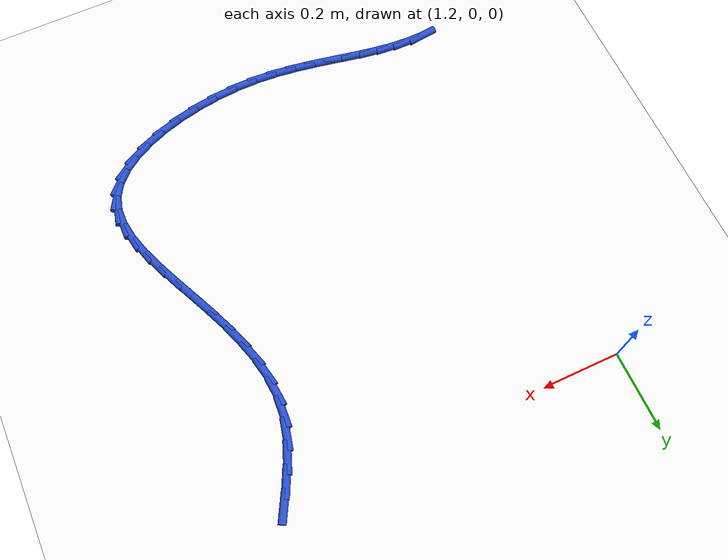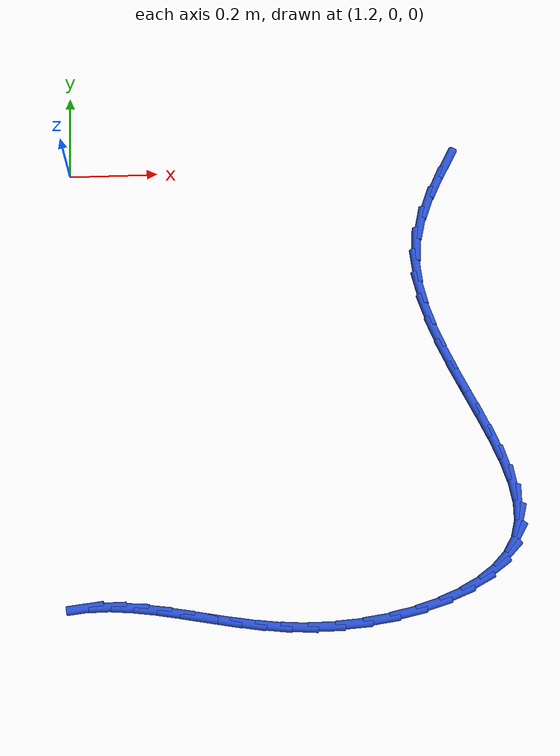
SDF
<sdf version="1.6">
 <world name="default">
  <model name="ground_plane">
   <static>1</static>
   <link name="link">
    <collision name="collision">
     <geometry><plane><normal>0 0 1</normal><size>100 100</size></plane></geometry>
     <surface><friction><ode><mu>100</mu><mu2>50</mu2></ode></friction></surface>
    </collision>
    <visual name="visual">
     <cast_shadows>0</cast_shadows>
     <geometry><plane><normal>0 0 1</normal><size>100 100</size></plane></geometry>
     <material>
      <script><uri>file://media/materials/scripts/gazebo.material</uri><name>Gazebo/WhiteGlow</name></script>
     </material>
    </visual>
   </link>
  </model>
  <model name="line">
   <link name="link_76">
    <pose>2.0655796693852513 -0.002304717286453758 0.01 0 1.57 1.080252154869839</pose>
    <collision name="collision">
     <geometry><cylinder><radius>0.01</radius><length>0.08</length></cylinder></geometry>
    </collision>
    <visual name="visual">
     <material>
      <script><name>Gazebo/Blue</name><uri>file://media/materials/scripts/gazebo.material</uri></script>
     </material>
     <geometry><cylinder><radius>0.01</radius><length>0.08</length></cylinder></geometry>
    </visual>
   </link>
   <link name="link_77">
    <pose>2.0397745782320316 -0.0506209555062561 0.01 0 1.57 1.127468500062821</pose>
    <collision name="collision">
     <geometry><cylinder><radius>0.01</radius><length>0.08</length></cylinder></geometry>
    </collision>
    <visual name="visual">
     <material>
      <script><name>Gazebo/Blue</name><uri>file://media/materials/scripts/gazebo.material</uri></script>
     </material>
     <geometry><cylinder><radius>0.01</radius><length>0.08</length></cylinder></geometry>
    </visual>
   </link>
   <link name="link_78">
    <pose>2.0162784045154667 -0.10010196946099545 0.01 0 1.57 1.212892779780893</pose>
    <collision name="collision">
     <geometry><cylinder><radius>0.01</radius><length>0.08</length></cylinder></geometry>
    </collision>
    <visual name="visual">
     <material>
      <script><name>Gazebo/Blue</name><uri>file://media/materials/scripts/gazebo.material</uri></script>
     </material>
     <geometry><cylinder><radius>0.01</radius><length>0.08</length></cylinder></geometry>
    </visual>
   </link>
   <link name="link_79">
    <pose>1.9973571829696326 -0.1506919479730085 0.01 0 1.57 1.3410104180642233</pose>
    <collision name="collision">
     <geometry><cylinder><radius>0.01</radius><length>0.08</length></cylinder></geometry>
    </collision>
    <visual name="visual">
     <material>
      <script><name>Gazebo/Blue</name><uri>file://media/materials/scripts/gazebo.material</uri></script>
     </material>
     <geometry><cylinder><radius>0.01</radius><length>0.08</length></cylinder></geometry>
    </visual>
   </link>
   <link name="link_80">
    <pose>1.9852769483286072 -0.2023350798646285 0.01 0 1.57 1.5071200783496619</pose>
    <collision name="collision">
     <geometry><cylinder><radius>0.01</radius><length>0.08</length></cylinder></geometry>
    </collision>
    <visual name="visual">
     <material>
      <script><name>Gazebo/Blue</name><uri>file://media/materials/scripts/gazebo.material</uri></script>
     </material>
     <geometry><cylinder><radius>0.01</radius><length>0.08</length></cylinder></geometry>
    </visual>
   </link>
   <link name="link_81">
    <pose>1.9819221370940712 -0.2549492944069339 0.01 0 1.57 -1.480041740921945</pose>
    <collision name="collision">
     <geometry><cylinder><radius>0.01</radius><length>0.08</length></cylinder></geometry>
    </collision>
    <visual name="visual">
     <material>
      <script><name>Gazebo/Blue</name><uri>file://media/materials/scripts/gazebo.material</uri></script>
     </material>
     <geometry><cylinder><radius>0.01</radius><length>0.08</length></cylinder></geometry>
    </visual>
   </link>
   <link name="link_82">
    <pose>1.9867761389426344 -0.3082872936586517 0.01 0 1.57 -1.3579830776845279</pose>
    <collision name="collision">
     <geometry><cylinder><radius>0.01</radius><length>0.08</length></cylinder></geometry>
    </collision>
    <visual name="visual">
     <material>
      <script><name>Gazebo/Blue</name><uri>file://media/materials/scripts/gazebo.material</uri></script>
     </material>
     <geometry><cylinder><radius>0.01</radius><length>0.08</length></cylinder></geometry>
    </visual>
   </link>
   <link name="link_83">
    <pose>1.9983908049084405 -0.3620376761668724 0.01 0 1.57 -1.26627769424861</pose>
    <collision name="collision">
     <geometry><cylinder><radius>0.01</radius><length>0.08</length></cylinder></geometry>
    </collision>
    <visual name="visual">
     <material>
      <script><name>Gazebo/Blue</name><uri>file://media/materials/scripts/gazebo.material</uri></script>
     </material>
     <geometry><cylinder><radius>0.01</radius><length>0.08</length></cylinder></geometry>
    </visual>
   </link>
   <link name="link_84">
    <pose>2.015315933549539 -0.415888899238252 0.01 0 1.57 -1.2011170949893417</pose>
    <collision name="collision">
     <geometry><cylinder><radius>0.01</radius><length>0.08</length></cylinder></geometry>
    </collision>
    <visual name="visual">
     <material>
      <script><name>Gazebo/Blue</name><uri>file://media/materials/scripts/gazebo.material</uri></script>
     </material>
     <geometry><cylinder><radius>0.01</radius><length>0.08</length></cylinder></geometry>
    </visual>
   </link>
   <link name="link_85">
    <pose>2.0361013234239786 -0.4695294201794428 0.01 0 1.57 -1.1590781358711286</pose>
    <collision name="collision">
     <geometry><cylinder><radius>0.01</radius><length>0.08</length></cylinder></geometry>
    </collision>
    <visual name="visual">
     <material>
      <script><name>Gazebo/Blue</name><uri>file://media/materials/scripts/gazebo.material</uri></script>
     </material>
     <geometry><cylinder><radius>0.01</radius><length>0.08</length></cylinder></geometry>
    </visual>
   </link>
   <link name="link_86">
    <pose>2.0592967730898097 -0.522647696297101 0.01 0 1.57 -1.138010111799064</pose>
    <collision name="collision">
     <geometry><cylinder><radius>0.01</radius><length>0.08</length></cylinder></geometry>
    </collision>
    <visual name="visual">
     <material>
      <script><name>Gazebo/Blue</name><uri>file://media/materials/scripts/gazebo.material</uri></script>
     </material>
     <geometry><cylinder><radius>0.01</radius><length>0.08</length></cylinder></geometry>
    </visual>
   </link>
   <link name="link_87">
    <pose>2.083452081105079 -0.5749321848978793 0.01 0 1.57 -1.137385087495834</pose>
    <collision name="collision">
     <geometry><cylinder><radius>0.01</radius><length>0.08</length></cylinder></geometry>
    </collision>
    <visual name="visual">
     <material>
      <script><name>Gazebo/Blue</name><uri>file://media/materials/scripts/gazebo.material</uri></script>
     </material>
     <geometry><cylinder><radius>0.01</radius><length>0.08</length></cylinder></geometry>
    </visual>
   </link>
   <link name="link_88">
    <pose>2.107117046027837 -0.6260713432884318 0.01 0 1.57 -1.1585815289538592</pose>
    <collision name="collision">
     <geometry><cylinder><radius>0.01</radius><length>0.08</length></cylinder></geometry>
    </collision>
    <visual name="visual">
     <material>
      <script><name>Gazebo/Blue</name><uri>file://media/materials/scripts/gazebo.material</uri></script>
     </material>
     <geometry><cylinder><radius>0.01</radius><length>0.08</length></cylinder></geometry>
    </visual>
   </link>
   <link name="link_89">
    <pose>2.128841466416133 -0.6757536287754137 0.01 0 1.57 -1.2053460716630455</pose>
    <collision name="collision">
     <geometry><cylinder><radius>0.01</radius><length>0.08</length></cylinder></geometry>
    </collision>
    <visual name="visual">
     <material>
      <script><name>Gazebo/Blue</name><uri>file://media/materials/scripts/gazebo.material</uri></script>
     </material>
     <geometry><cylinder><radius>0.01</radius><length>0.08</length></cylinder></geometry>
    </visual>
   </link>
   <link name="link_90">
    <pose>2.147175140828014 -0.7236674986654787 0.01 0 1.57 -1.2845006244067267</pose>
    <collision name="collision">
     <geometry><cylinder><radius>0.01</radius><length>0.08</length></cylinder></geometry>
    </collision>
    <visual name="visual">
     <material>
      <script><name>Gazebo/Blue</name><uri>file://media/materials/scripts/gazebo.material</uri></script>
     </material>
     <geometry><cylinder><radius>0.01</radius><length>0.08</length></cylinder></geometry>
    </visual>
   </link>
   <link name="link_91">
    <pose>2.16066786782153 -0.7695014102652797 0.01 0 1.57 -1.406517302185844</pose>
    <collision name="collision">
     <geometry><cylinder><radius>0.01</radius><length>0.08</length></cylinder></geometry>
    </collision>
    <visual name="visual">
     <material>
      <script><name>Gazebo/Blue</name><uri>file://media/materials/scripts/gazebo.material</uri></script>
     </material>
     <geometry><cylinder><radius>0.01</radius><length>0.08</length></cylinder></geometry>
    </visual>
   </link>
   <link name="link_92">
    <pose>2.16786944595473 -0.8129438208814731 0.01 0 1.57 1.5575477019907449</pose>
    <collision name="collision">
     <geometry><cylinder><radius>0.01</radius><length>0.08</length></cylinder></geometry>
    </collision>
    <visual name="visual">
     <material>
      <script><name>Gazebo/Blue</name><uri>file://media/materials/scripts/gazebo.material</uri></script>
     </material>
     <geometry><cylinder><radius>0.01</radius><length>0.08</length></cylinder></geometry>
    </visual>
   </link>
   <link name="link_93">
    <pose>2.1673296737856633 -0.853683187820711 0.01 0 1.57 1.3183440323550255</pose>
    <collision name="collision">
     <geometry><cylinder><radius>0.01</radius><length>0.08</length></cylinder></geometry>
    </collision>
    <visual name="visual">
     <material>
      <script><name>Gazebo/Blue</name><uri>file://media/materials/scripts/gazebo.material</uri></script>
     </material>
     <geometry><cylinder><radius>0.01</radius><length>0.08</length></cylinder></geometry>
    </visual>
   </link>
   <link name="link_94">
    <pose>2.1575983498723788 -0.8914079683896493 0.01 0 1.57 1.04177745131362</pose>
    <collision name="collision">
     <geometry><cylinder><radius>0.01</radius><length>0.08</length></cylinder></geometry>
    </collision>
    <visual name="visual">
     <material>
      <script><name>Gazebo/Blue</name><uri>file://media/materials/scripts/gazebo.material</uri></script>
     </material>
     <geometry><cylinder><radius>0.01</radius><length>0.08</length></cylinder></geometry>
    </visual>
   </link>
   <link name="link_95">
    <pose>2.137478252434637 -0.9258248404817949 0.01 0 1.57 0.8028435392534158</pose>
    <collision name="collision">
     <geometry><cylinder><radius>0.01</radius><length>0.08</length></cylinder></geometry>
    </collision>
    <visual name="visual">
     <material>
      <script><name>Gazebo/Blue</name><uri>file://media/materials/scripts/gazebo.material</uri></script>
     </material>
     <geometry><cylinder><radius>0.01</radius><length>0.08</length></cylinder></geometry>
    </visual>
   </link>
   <link name="link_96">
    <pose>2.10759282752398 -0.9567716136244647 0.01 0 1.57 0.6213694327653867</pose>
    <collision name="collision">
     <geometry><cylinder><radius>0.01</radius><length>0.08</length></cylinder></geometry>
    </collision>
    <visual name="visual">
     <material>
      <script><name>Gazebo/Blue</name><uri>file://media/materials/scripts/gazebo.material</uri></script>
     </material>
     <geometry><cylinder><radius>0.01</radius><length>0.08</length></cylinder></geometry>
    </visual>
   </link>
   <link name="link_97">
    <pose>2.069362759053819 -0.9841435175407615 0.01 0 1.57 0.4832458283812483</pose>
    <collision name="collision">
     <geometry><cylinder><radius>0.01</radius><length>0.08</length></cylinder></geometry>
    </collision>
    <visual name="visual">
     <material>
      <script><name>Gazebo/Blue</name><uri>file://media/materials/scripts/gazebo.material</uri></script>
     </material>
     <geometry><cylinder><radius>0.01</radius><length>0.08</length></cylinder></geometry>
    </visual>
   </link>
   <link name="link_98">
    <pose>2.0242121059130165 -1.0078360250327483 0.01 0 1.57 0.3745299248284848</pose>
    <collision name="collision">
     <geometry><cylinder><radius>0.01</radius><length>0.08</length></cylinder></geometry>
    </collision>
    <visual name="visual">
     <material>
      <script><name>Gazebo/Blue</name><uri>file://media/materials/scripts/gazebo.material</uri></script>
     </material>
     <geometry><cylinder><radius>0.01</radius><length>0.08</length></cylinder></geometry>
    </visual>
   </link>
   <link name="link_99">
    <pose>1.9735649269904334 -1.0277446089024895 0.01 0 1.57 0.28480832232576725</pose>
    <collision name="collision">
     <geometry><cylinder><radius>0.01</radius><length>0.08</length></cylinder></geometry>
    </collision>
    <visual name="visual">
     <material>
      <script><name>Gazebo/Blue</name><uri>file://media/materials/scripts/gazebo.material</uri></script>
     </material>
     <geometry><cylinder><radius>0.01</radius><length>0.08</length></cylinder></geometry>
    </visual>
   </link>
   <link name="link_100">
    <pose>1.9188452811749304 -1.0437647419520482 0.01 0 1.57 0.20665599440319796</pose>
    <collision name="collision">
     <geometry><cylinder><radius>0.01</radius><length>0.08</length></cylinder></geometry>
    </collision>
    <visual name="visual">
     <material>
      <script><name>Gazebo/Blue</name><uri>file://media/materials/scripts/gazebo.material</uri></script>
     </material>
     <geometry><cylinder><radius>0.01</radius><length>0.08</length></cylinder></geometry>
    </visual>
   </link>
   <link name="link_101">
    <pose>1.8614772273553695 -1.0557918969834867 0.01 0 1.57 0.1345185043563749</pose>
    <collision name="collision">
     <geometry><cylinder><radius>0.01</radius><length>0.08</length></cylinder></geometry>
    </collision>
    <visual name="visual">
     <material>
      <script><name>Gazebo/Blue</name><uri>file://media/materials/scripts/gazebo.material</uri></script>
     </material>
     <geometry><cylinder><radius>0.01</radius><length>0.08</length></cylinder></geometry>
    </visual>
   </link>
   <link name="link_102">
    <pose>1.8028848244206113 -1.0637215467988703 0.01 0 1.57 0.06375054801562753</pose>
    <collision name="collision">
     <geometry><cylinder><radius>0.01</radius><length>0.08</length></cylinder></geometry>
    </collision>
    <visual name="visual">
     <material>
      <script><name>Gazebo/Blue</name><uri>file://media/materials/scripts/gazebo.material</uri></script>
     </material>
     <geometry><cylinder><radius>0.01</radius><length>0.08</length></cylinder></geometry>
    </visual>
   </link>
   <link name="link_103">
    <pose>1.7444921312595172 -1.0674491642002613 0.01 0 1.57 -0.009286748616456997</pose>
    <collision name="collision">
     <geometry><cylinder><radius>0.01</radius><length>0.08</length></cylinder></geometry>
    </collision>
    <visual name="visual">
     <material>
      <script><name>Gazebo/Blue</name><uri>file://media/materials/scripts/gazebo.material</uri></script>
     </material>
     <geometry><cylinder><radius>0.01</radius><length>0.08</length></cylinder></geometry>
    </visual>
   </link>
   <link name="link_104">
    <pose>1.6876434832823184 -1.0669212099196475 0.01 0 1.57 -0.07692014414634797</pose>
    <collision name="collision">
     <geometry><cylinder><radius>0.01</radius><length>0.08</length></cylinder></geometry>
    </collision>
    <visual name="visual">
     <material>
      <script><name>Gazebo/Blue</name><uri>file://media/materials/scripts/gazebo.material</uri></script>
     </material>
     <geometry><cylinder><radius>0.01</radius><length>0.08</length></cylinder></geometry>
    </visual>
   </link>
   <link name="link_105">
    <pose>1.6327368051105833 -1.062689430958518 0.01 0 1.57 -0.1306248242853461</pose>
    <collision name="collision">
     <geometry><cylinder><radius>0.01</radius><length>0.08</length></cylinder></geometry>
    </collision>
    <visual name="visual">
     <material>
      <script><name>Gazebo/Blue</name><uri>file://media/materials/scripts/gazebo.material</uri></script>
     </material>
     <geometry><cylinder><radius>0.01</radius><length>0.08</length></cylinder></geometry>
    </visual>
   </link>
   <link name="link_106">
    <pose>1.579549983821107 -1.05570212538997 0.01 0 1.57 -0.16836523836311182</pose>
    <collision name="collision">
     <geometry><cylinder><radius>0.01</radius><length>0.08</length></cylinder></geometry>
    </collision>
    <visual name="visual">
     <material>
      <script><name>Gazebo/Blue</name><uri>file://media/materials/scripts/gazebo.material</uri></script>
     </material>
     <geometry><cylinder><radius>0.01</radius><length>0.08</length></cylinder></geometry>
    </visual>
   </link>
   <link name="link_107">
    <pose>1.527850139552364 -1.046914477387734 0.01 0 1.57 -0.18868233667217796</pose>
    <collision name="collision">
     <geometry><cylinder><radius>0.01</radius><length>0.08</length></cylinder></geometry>
    </collision>
    <visual name="visual">
     <material>
      <script><name>Gazebo/Blue</name><uri>file://media/materials/scripts/gazebo.material</uri></script>
     </material>
     <geometry><cylinder><radius>0.01</radius><length>0.08</length></cylinder></geometry>
    </visual>
   </link>
   <link name="link_108">
    <pose>1.477404392442831 -1.0372816711255386 0.01 0 1.57 -0.19034069807098258</pose>
    <collision name="collision">
     <geometry><cylinder><radius>0.01</radius><length>0.08</length></cylinder></geometry>
    </collision>
    <visual name="visual">
     <material>
      <script><name>Gazebo/Blue</name><uri>file://media/materials/scripts/gazebo.material</uri></script>
     </material>
     <geometry><cylinder><radius>0.01</radius><length>0.08</length></cylinder></geometry>
    </visual>
   </link>
   <link name="link_109">
    <pose>1.4279798626309843 -1.0277588907771142 0.01 0 1.57 -0.17217289333436042</pose>
    <collision name="collision">
     <geometry><cylinder><radius>0.01</radius><length>0.08</length></cylinder></geometry>
    </collision>
    <visual name="visual">
     <material>
      <script><name>Gazebo/Blue</name><uri>file://media/materials/scripts/gazebo.material</uri></script>
     </material>
     <geometry><cylinder><radius>0.01</radius><length>0.08</length></cylinder></geometry>
    </visual>
   </link>
   <link name="link_110">
    <pose>1.3793436702552975 -1.0193013205161896 0.01 0 1.57 -0.1330912111526986</pose>
    <collision name="collision">
     <geometry><cylinder><radius>0.01</radius><length>0.08</length></cylinder></geometry>
    </collision>
    <visual name="visual">
     <material>
      <script><name>Gazebo/Blue</name><uri>file://media/materials/scripts/gazebo.material</uri></script>
     </material>
     <geometry><cylinder><radius>0.01</radius><length>0.08</length></cylinder></geometry>
    </visual>
   </link>
   <link name="link_111">
    <pose>1.331262935454247 -1.0128641445164939 0.01 0 1.57 -0.07235527600541183</pose>
    <collision name="collision">
     <geometry><cylinder><radius>0.01</radius><length>0.08</length></cylinder></geometry>
    </collision>
    <visual name="visual">
     <material>
      <script><name>Gazebo/Blue</name><uri>file://media/materials/scripts/gazebo.material</uri></script>
     </material>
     <geometry><cylinder><radius>0.01</radius><length>0.08</length></cylinder></geometry>
    </visual>
   </link>
   <link name="link_112">
    <pose>1.2835047783663094 -1.0094025469517574 0.01 0 1.57 0.009841935380691549</pose>
    <collision name="collision">
     <geometry><cylinder><radius>0.01</radius><length>0.08</length></cylinder></geometry>
    </collision>
    <visual name="visual">
     <material>
      <script><name>Gazebo/Blue</name><uri>file://media/materials/scripts/gazebo.material</uri></script>
     </material>
     <geometry><cylinder><radius>0.01</radius><length>0.08</length></cylinder></geometry>
    </visual>
   </link>
   <link name="link_113">
    <pose>1.2358363191299588 -1.0098717119957092 0.01 0 1.57 0.11153948072146375</pose>
    <collision name="collision">
     <geometry><cylinder><radius>0.01</radius><length>0.08</length></cylinder></geometry>
    </collision>
    <visual name="visual">
     <material>
      <script><name>Gazebo/Blue</name><uri>file://media/materials/scripts/gazebo.material</uri></script>
     </material>
     <geometry><cylinder><radius>0.01</radius><length>0.08</length></cylinder></geometry>
    </visual>
   </link>
  </model>
 </world>
</sdf>
